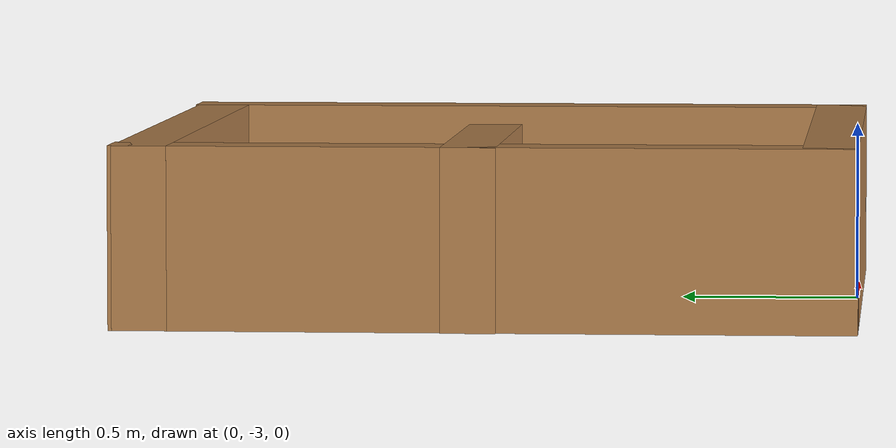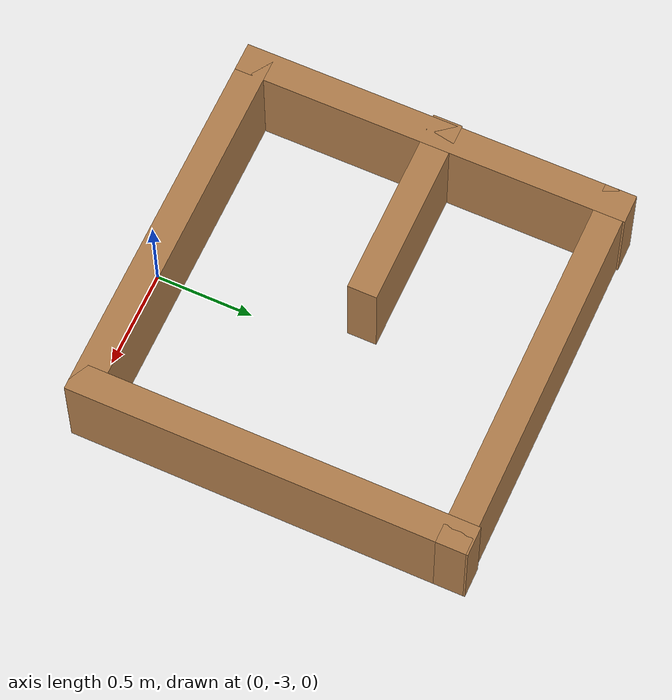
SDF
<?xml version='1.0'?>
<sdf version='1.6'>
  <model name='world1'>
    <pose frame=''>-0.1 -2.005 0 0 -0 0</pose>
    <link name='Wall_0'>
      <collision name='Wall_0_Collision'>
        <geometry>
          <box>
            <size>2 0.15 0.5</size>
          </box>
        </geometry>
        <pose frame=''>0 0 0.25 0 -0 0</pose>
      </collision>
      <visual name='Wall_0_Visual'>
        <pose frame=''>0 0 0.25 0 -0 0</pose>
        <geometry>
          <box>
            <size>2 0.15 0.5</size>
          </box>
        </geometry>
        <material>
          <script>
            <uri>file://media/materials/scripts/gazebo.material</uri>
            <name>Gazebo/Wood</name>
          </script>
          <ambient>1 1 1 1</ambient>
        </material>
        <meta>
          <layer>0</layer>
        </meta>
      </visual>
      <pose frame=''>0.005 0.925 0 0 -0 3.14159</pose>
    </link>
    <link name='Wall_1'>
      <collision name='Wall_1_Collision'>
        <geometry>
          <box>
            <size>2.02 0.15 0.5</size>
          </box>
        </geometry>
        <pose frame=''>0 0 0.25 0 -0 0</pose>
      </collision>
      <visual name='Wall_1_Visual'>
        <pose frame=''>0 0 0.25 0 -0 0</pose>
        <geometry>
          <box>
            <size>2.02 0.15 0.5</size>
          </box>
        </geometry>
        <material>
          <script>
            <uri>file://media/materials/scripts/gazebo.material</uri>
            <name>Gazebo/Wood</name>
          </script>
          <ambient>1 1 1 1</ambient>
        </material>
        <meta>
          <layer>0</layer>
        </meta>
      </visual>
      <pose frame=''>-0.92 0 0 0 -0 -1.5708</pose>
    </link>
    <link name='Wall_2'>
      <collision name='Wall_2_Collision'>
        <geometry>
          <box>
            <size>2 0.15 0.5</size>
          </box>
        </geometry>
        <pose frame=''>0 0 0.25 0 -0 0</pose>
      </collision>
      <visual name='Wall_2_Visual'>
        <pose frame=''>0 0 0.25 0 -0 0</pose>
        <geometry>
          <box>
            <size>2 0.15 0.5</size>
          </box>
        </geometry>
        <material>
          <script>
            <uri>file://media/materials/scripts/gazebo.material</uri>
            <name>Gazebo/Wood</name>
          </script>
          <ambient>1 1 1 1</ambient>
        </material>
        <meta>
          <layer>0</layer>
        </meta>
      </visual>
      <pose frame=''>0.005 -0.935 0 0 -0 0</pose>
    </link>
    <link name='Wall_3'>
      <collision name='Wall_3_Collision'>
        <geometry>
          <box>
            <size>2.02 0.15 0.5</size>
          </box>
        </geometry>
        <pose frame=''>0 0 0.25 0 -0 0</pose>
      </collision>
      <visual name='Wall_3_Visual'>
        <pose frame=''>0 0 0.25 0 -0 0</pose>
        <geometry>
          <box>
            <size>2.02 0.15 0.5</size>
          </box>
        </geometry>
        <material>
          <script>
            <uri>file://media/materials/scripts/gazebo.material</uri>
            <name>Gazebo/Wood</name>
          </script>
          <ambient>1 1 1 1</ambient>
        </material>
        <meta>
          <layer>0</layer>
        </meta>
      </visual>
      <pose frame=''>0.93 0 0 0 -0 1.5708</pose>
    </link>
    <link name='Wall_6'>
      <collision name='Wall_6_Collision'>
        <geometry>
          <box>
            <size>1 0.15 0.5</size>
          </box>
        </geometry>
        <pose frame=''>0 0 0.25 0 -0 0</pose>
      </collision>
      <visual name='Wall_6_Visual'>
        <pose frame=''>0 0 0.25 0 -0 0</pose>
        <geometry>
          <box>
            <size>1 0.15 0.5</size>
          </box>
        </geometry>
        <material>
          <script>
            <uri>file://media/materials/scripts/gazebo.material</uri>
            <name>Gazebo/Wood</name>
          </script>
          <ambient>1 1 1 1</ambient>
        </material>
        <meta>
          <layer>0</layer>
        </meta>
      </visual>
      <pose frame=''>-0.505 0.035 0 0 -0 0</pose>
    </link>
    <static>1</static>
  </model>
</sdf>
